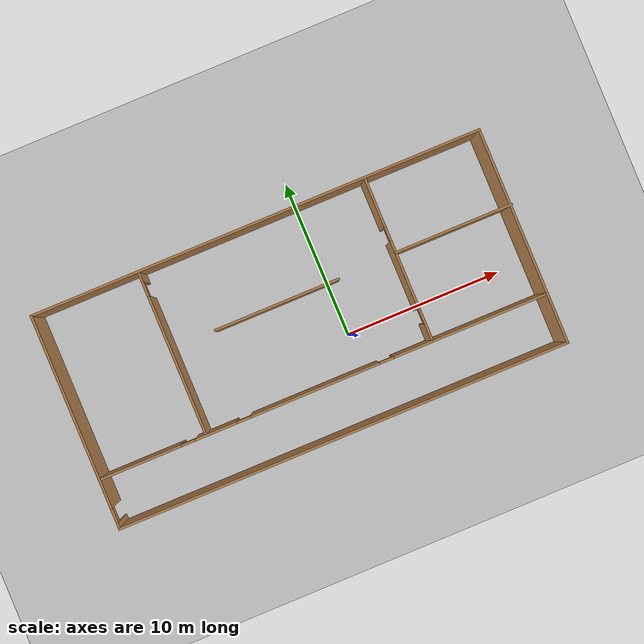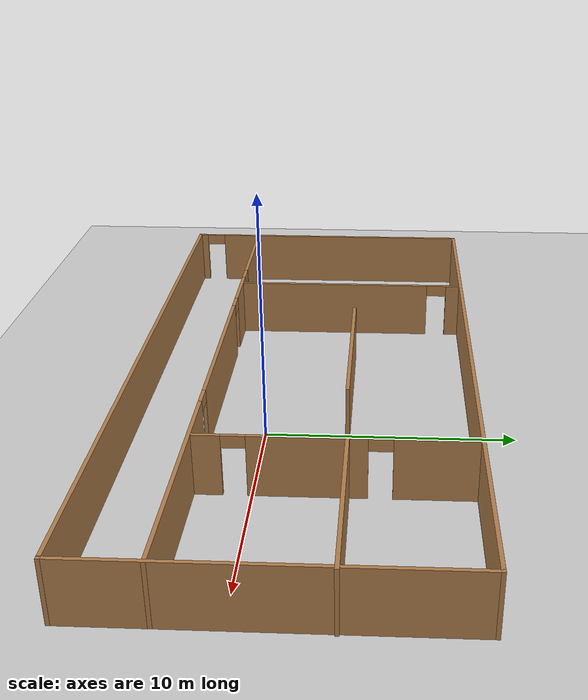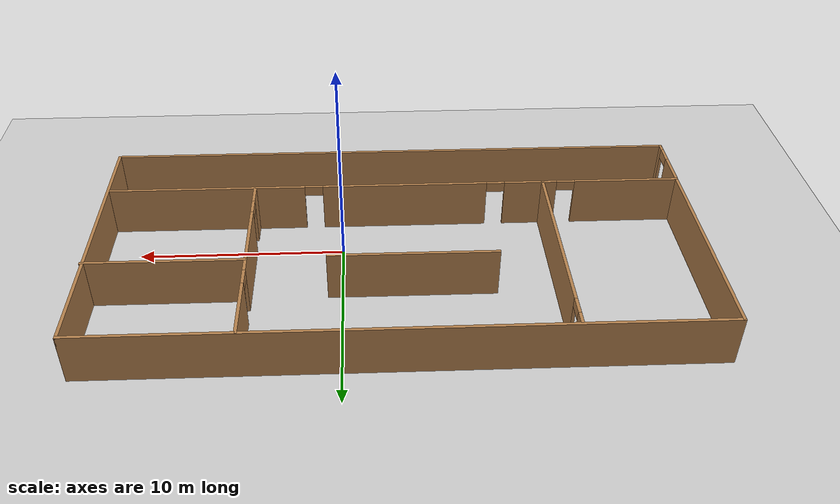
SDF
<sdf version="1.6">
 <world name="default">
  <model name="ground_plane">
   <static>1</static>
   <link name="link">
    <collision name="collision">
     <geometry><plane><normal>0 0 1</normal><size>100 100</size></plane></geometry>
     <surface>
      <contact><collide_bitmask>65535</collide_bitmask></contact>
      <friction><ode><mu>100</mu><mu2>50</mu2></ode></friction>
     </surface>
    </collision>
    <visual name="visual">
     <cast_shadows>0</cast_shadows>
     <geometry><plane><normal>0 0 1</normal><size>100 100</size></plane></geometry>
     <material>
      <script><uri>file://media/materials/scripts/gazebo.material</uri><name>Gazebo/Grey</name></script>
     </material>
    </visual>
   </link>
  </model>
  <model name="mybuilding">
   <link name="Wall_0">
    <pose>-14.3342 0 0 0 -0 1.5708</pose>
    <visual name="Wall_0_Visual_0">
     <pose>-6.64035 0 1.25 0 -0 0</pose>
     <geometry><box><size>0.46929 0.15 2.5</size></box></geometry>
     <material>
      <script><uri>file://media/materials/scripts/gazebo.material</uri><name>Gazebo/Wood</name></script>
      <ambient>1 1 1 1</ambient>
      <shader type="pixel"/>
      <diffuse>1 1 1 1</diffuse>
      <specular>0.2 0.2 0.2 1</specular>
      <emissive>0 0 0 1</emissive>
     </material>
     <meta><layer>0</layer></meta>
    </visual>
    <visual name="Wall_0_Visual_1">
     <pose>0.684645 0 1.25 0 -0 0</pose>
     <geometry><box><size>12.3807 0.15 2.5</size></box></geometry>
     <material>
      <script><uri>file://media/materials/scripts/gazebo.material</uri><name>Gazebo/Wood</name></script>
      <ambient>1 1 1 1</ambient>
      <shader type="pixel"/>
      <diffuse>1 1 1 1</diffuse>
      <specular>0.2 0.2 0.2 1</specular>
      <emissive>0 0 0 1</emissive>
     </material>
     <meta><layer>0</layer></meta>
    </visual>
    <visual name="Wall_0_Visual_2">
     <pose>-5.95571 0 2.25 0 -0 0</pose>
     <geometry><box><size>0.9 0.15 0.5</size></box></geometry>
     <material>
      <script><uri>file://media/materials/scripts/gazebo.material</uri><name>Gazebo/Wood</name></script>
      <ambient>1 1 1 1</ambient>
      <shader type="pixel"/>
      <diffuse>1 1 1 1</diffuse>
      <specular>0.2 0.2 0.2 1</specular>
      <emissive>0 0 0 1</emissive>
     </material>
     <meta><layer>0</layer></meta>
    </visual>
    <collision name="Wall_0_Collision_0">
     <pose>-6.64035 0 1.25 0 -0 0</pose>
     <geometry><box><size>0.46929 0.15 2.5</size></box></geometry>
     <surface>
      <friction>
       <ode><mu>1</mu><mu2>1</mu2><fdir1>0 0 0</fdir1><slip1>0</slip1><slip2>0</slip2></ode>
       <torsional>
        <coefficient>1</coefficient>
        <patch_radius>0</patch_radius>
        <surface_radius>0</surface_radius>
        <use_patch_radius>1</use_patch_radius>
        <ode><slip>0</slip></ode>
       </torsional>
      </friction>
      <bounce><restitution_coefficient>0</restitution_coefficient><threshold>1e+06</threshold></bounce>
      <contact>
       <collide_without_contact>0</collide_without_contact>
       <collide_without_contact_bitmask>1</collide_without_contact_bitmask>
       <collide_bitmask>1</collide_bitmask>
       <ode>
        <soft_cfm>0</soft_cfm>
        <soft_erp>0.2</soft_erp>
        <kp>1e+13</kp>
        <kd>1</kd>
        <max_vel>0.01</max_vel>
        <min_depth>0</min_depth>
       </ode>
       <bullet>
        <split_impulse>1</split_impulse>
        <split_impulse_penetration_threshold>-0.01</split_impulse_penetration_threshold>
        <soft_cfm>0</soft_cfm>
        <soft_erp>0.2</soft_erp>
        <kp>1e+13</kp>
        <kd>1</kd>
       </bullet>
      </contact>
     </surface>
    </collision>
    <collision name="Wall_0_Collision_1">
     <pose>0.684645 0 1.25 0 -0 0</pose>
     <geometry><box><size>12.3807 0.15 2.5</size></box></geometry>
     <surface>
      <friction>
       <ode><mu>1</mu><mu2>1</mu2><fdir1>0 0 0</fdir1><slip1>0</slip1><slip2>0</slip2></ode>
       <torsional>
        <coefficient>1</coefficient>
        <patch_radius>0</patch_radius>
        <surface_radius>0</surface_radius>
        <use_patch_radius>1</use_patch_radius>
        <ode><slip>0</slip></ode>
       </torsional>
      </friction>
      <bounce><restitution_coefficient>0</restitution_coefficient><threshold>1e+06</threshold></bounce>
      <contact>
       <collide_without_contact>0</collide_without_contact>
       <collide_without_contact_bitmask>1</collide_without_contact_bitmask>
       <collide_bitmask>1</collide_bitmask>
       <ode>
        <soft_cfm>0</soft_cfm>
        <soft_erp>0.2</soft_erp>
        <kp>1e+13</kp>
        <kd>1</kd>
        <max_vel>0.01</max_vel>
        <min_depth>0</min_depth>
       </ode>
       <bullet>
        <split_impulse>1</split_impulse>
        <split_impulse_penetration_threshold>-0.01</split_impulse_penetration_threshold>
        <soft_cfm>0</soft_cfm>
        <soft_erp>0.2</soft_erp>
        <kp>1e+13</kp>
        <kd>1</kd>
       </bullet>
      </contact>
     </surface>
    </collision>
    <collision name="Wall_0_Collision_2">
     <pose>-5.95571 0 2.25 0 -0 0</pose>
     <geometry><box><size>0.9 0.15 0.5</size></box></geometry>
     <surface>
      <friction>
       <ode><mu>1</mu><mu2>1</mu2><fdir1>0 0 0</fdir1><slip1>0</slip1><slip2>0</slip2></ode>
       <torsional>
        <coefficient>1</coefficient>
        <patch_radius>0</patch_radius>
        <surface_radius>0</surface_radius>
        <use_patch_radius>1</use_patch_radius>
        <ode><slip>0</slip></ode>
       </torsional>
      </friction>
      <bounce><restitution_coefficient>0</restitution_coefficient><threshold>1e+06</threshold></bounce>
      <contact>
       <collide_without_contact>0</collide_without_contact>
       <collide_without_contact_bitmask>1</collide_without_contact_bitmask>
       <collide_bitmask>1</collide_bitmask>
       <ode>
        <soft_cfm>0</soft_cfm>
        <soft_erp>0.2</soft_erp>
        <kp>1e+13</kp>
        <kd>1</kd>
        <max_vel>0.01</max_vel>
        <min_depth>0</min_depth>
       </ode>
       <bullet>
        <split_impulse>1</split_impulse>
        <split_impulse_penetration_threshold>-0.01</split_impulse_penetration_threshold>
        <soft_cfm>0</soft_cfm>
        <soft_erp>0.2</soft_erp>
        <kp>1e+13</kp>
        <kd>1</kd>
       </bullet>
      </contact>
     </surface>
    </collision>
   </link>
   <link name="Wall_1">
    <pose>-0.034165 6.8 0 0 -0 0</pose>
    <visual name="Wall_1_Visual">
     <pose>0 0 1.25 0 -0 0</pose>
     <geometry><box><size>28.75 0.15 2.5</size></box></geometry>
     <material>
      <script><uri>file://media/materials/scripts/gazebo.material</uri><name>Gazebo/Wood</name></script>
      <ambient>1 1 1 1</ambient>
      <shader type="pixel"/>
      <diffuse>1 1 1 1</diffuse>
      <specular>0.2 0.2 0.2 1</specular>
      <emissive>0 0 0 1</emissive>
     </material>
     <meta><layer>0</layer></meta>
    </visual>
    <collision name="Wall_1_Collision">
     <pose>0 0 1.25 0 -0 0</pose>
     <geometry><box><size>28.75 0.15 2.5</size></box></geometry>
     <surface>
      <friction>
       <ode><mu>1</mu><mu2>1</mu2><fdir1>0 0 0</fdir1><slip1>0</slip1><slip2>0</slip2></ode>
       <torsional>
        <coefficient>1</coefficient>
        <patch_radius>0</patch_radius>
        <surface_radius>0</surface_radius>
        <use_patch_radius>1</use_patch_radius>
        <ode><slip>0</slip></ode>
       </torsional>
      </friction>
      <bounce><restitution_coefficient>0</restitution_coefficient><threshold>1e+06</threshold></bounce>
      <contact>
       <collide_without_contact>0</collide_without_contact>
       <collide_without_contact_bitmask>1</collide_without_contact_bitmask>
       <collide_bitmask>1</collide_bitmask>
       <ode>
        <soft_cfm>0</soft_cfm>
        <soft_erp>0.2</soft_erp>
        <kp>1e+13</kp>
        <kd>1</kd>
        <max_vel>0.01</max_vel>
        <min_depth>0</min_depth>
       </ode>
       <bullet>
        <split_impulse>1</split_impulse>
        <split_impulse_penetration_threshold>-0.01</split_impulse_penetration_threshold>
        <soft_cfm>0</soft_cfm>
        <soft_erp>0.2</soft_erp>
        <kp>1e+13</kp>
        <kd>1</kd>
       </bullet>
      </contact>
     </surface>
    </collision>
   </link>
   <link name="Wall_11">
    <pose>10.6592 1.99469 0 0 -0 0</pose>
    <visual name="Wall_11_Visual">
     <pose>0 0 1.25 0 -0 0</pose>
     <geometry><box><size>7.5 0.15 2.5</size></box></geometry>
     <material>
      <script><uri>file://media/materials/scripts/gazebo.material</uri><name>Gazebo/Wood</name></script>
      <ambient>1 1 1 1</ambient>
      <shader type="pixel"/>
      <diffuse>1 1 1 1</diffuse>
      <specular>0.2 0.2 0.2 1</specular>
      <emissive>0 0 0 1</emissive>
     </material>
     <meta><layer>0</layer></meta>
    </visual>
    <collision name="Wall_11_Collision">
     <pose>0 0 1.25 0 -0 0</pose>
     <geometry><box><size>7.5 0.15 2.5</size></box></geometry>
     <surface>
      <friction>
       <ode><mu>1</mu><mu2>1</mu2><fdir1>0 0 0</fdir1><slip1>0</slip1><slip2>0</slip2></ode>
       <torsional>
        <coefficient>1</coefficient>
        <patch_radius>0</patch_radius>
        <surface_radius>0</surface_radius>
        <use_patch_radius>1</use_patch_radius>
        <ode><slip>0</slip></ode>
       </torsional>
      </friction>
      <bounce><restitution_coefficient>0</restitution_coefficient><threshold>1e+06</threshold></bounce>
      <contact>
       <collide_without_contact>0</collide_without_contact>
       <collide_without_contact_bitmask>1</collide_without_contact_bitmask>
       <collide_bitmask>1</collide_bitmask>
       <ode>
        <soft_cfm>0</soft_cfm>
        <soft_erp>0.2</soft_erp>
        <kp>1e+13</kp>
        <kd>1</kd>
        <max_vel>0.01</max_vel>
        <min_depth>0</min_depth>
       </ode>
       <bullet>
        <split_impulse>1</split_impulse>
        <split_impulse_penetration_threshold>-0.01</split_impulse_penetration_threshold>
        <soft_cfm>0</soft_cfm>
        <soft_erp>0.2</soft_erp>
        <kp>1e+13</kp>
        <kd>1</kd>
       </bullet>
      </contact>
     </surface>
    </collision>
   </link>
   <link name="Wall_13">
    <pose>-0.699826 1.85398 0 0 -0 0</pose>
    <visual name="Wall_13_Visual">
     <pose>0 0 1.25 0 -0 0</pose>
     <geometry><box><size>8 0.15 2.5</size></box></geometry>
     <material>
      <script><uri>file://media/materials/scripts/gazebo.material</uri><name>Gazebo/Wood</name></script>
      <ambient>1 1 1 1</ambient>
      <shader type="pixel"/>
      <diffuse>1 1 1 1</diffuse>
      <specular>0.2 0.2 0.2 1</specular>
      <emissive>0 0 0 1</emissive>
     </material>
     <meta><layer>0</layer></meta>
    </visual>
    <collision name="Wall_13_Collision">
     <pose>0 0 1.25 0 -0 0</pose>
     <geometry><box><size>8 0.15 2.5</size></box></geometry>
     <surface>
      <friction>
       <ode><mu>1</mu><mu2>1</mu2><fdir1>0 0 0</fdir1><slip1>0</slip1><slip2>0</slip2></ode>
       <torsional>
        <coefficient>1</coefficient>
        <patch_radius>0</patch_radius>
        <surface_radius>0</surface_radius>
        <use_patch_radius>1</use_patch_radius>
        <ode><slip>0</slip></ode>
       </torsional>
      </friction>
      <bounce><restitution_coefficient>0</restitution_coefficient><threshold>1e+06</threshold></bounce>
      <contact>
       <collide_without_contact>0</collide_without_contact>
       <collide_without_contact_bitmask>1</collide_without_contact_bitmask>
       <collide_bitmask>1</collide_bitmask>
       <ode>
        <soft_cfm>0</soft_cfm>
        <soft_erp>0.2</soft_erp>
        <kp>1e+13</kp>
        <kd>1</kd>
        <max_vel>0.01</max_vel>
        <min_depth>0</min_depth>
       </ode>
       <bullet>
        <split_impulse>1</split_impulse>
        <split_impulse_penetration_threshold>-0.01</split_impulse_penetration_threshold>
        <soft_cfm>0</soft_cfm>
        <soft_erp>0.2</soft_erp>
        <kp>1e+13</kp>
        <kd>1</kd>
       </bullet>
      </contact>
     </surface>
    </collision>
   </link>
   <link name="Wall_2">
    <pose>14.2658 0 0 0 0 -1.5708</pose>
    <visual name="Wall_2_Visual">
     <pose>0 0 1.25 0 -0 0</pose>
     <geometry><box><size>13.75 0.15 2.5</size></box></geometry>
     <material>
      <script><uri>file://media/materials/scripts/gazebo.material</uri><name>Gazebo/Wood</name></script>
      <ambient>1 1 1 1</ambient>
      <shader type="pixel"/>
      <diffuse>1 1 1 1</diffuse>
      <specular>0.2 0.2 0.2 1</specular>
      <emissive>0 0 0 1</emissive>
     </material>
     <meta><layer>0</layer></meta>
    </visual>
    <collision name="Wall_2_Collision">
     <pose>0 0 1.25 0 -0 0</pose>
     <geometry><box><size>13.75 0.15 2.5</size></box></geometry>
     <surface>
      <friction>
       <ode><mu>1</mu><mu2>1</mu2><fdir1>0 0 0</fdir1><slip1>0</slip1><slip2>0</slip2></ode>
       <torsional>
        <coefficient>1</coefficient>
        <patch_radius>0</patch_radius>
        <surface_radius>0</surface_radius>
        <use_patch_radius>1</use_patch_radius>
        <ode><slip>0</slip></ode>
       </torsional>
      </friction>
      <bounce><restitution_coefficient>0</restitution_coefficient><threshold>1e+06</threshold></bounce>
      <contact>
       <collide_without_contact>0</collide_without_contact>
       <collide_without_contact_bitmask>1</collide_without_contact_bitmask>
       <collide_bitmask>1</collide_bitmask>
       <ode>
        <soft_cfm>0</soft_cfm>
        <soft_erp>0.2</soft_erp>
        <kp>1e+13</kp>
        <kd>1</kd>
        <max_vel>0.01</max_vel>
        <min_depth>0</min_depth>
       </ode>
       <bullet>
        <split_impulse>1</split_impulse>
        <split_impulse_penetration_threshold>-0.01</split_impulse_penetration_threshold>
        <soft_cfm>0</soft_cfm>
        <soft_erp>0.2</soft_erp>
        <kp>1e+13</kp>
        <kd>1</kd>
       </bullet>
      </contact>
     </surface>
    </collision>
   </link>
   <link name="Wall_3">
    <pose>-0.034165 -6.8 0 0 -0 3.14159</pose>
    <visual name="Wall_3_Visual">
     <pose>0 0 1.25 0 -0 0</pose>
     <geometry><box><size>28.75 0.15 2.5</size></box></geometry>
     <material>
      <script><uri>file://media/materials/scripts/gazebo.material</uri><name>Gazebo/Wood</name></script>
      <ambient>1 1 1 1</ambient>
      <shader type="pixel"/>
      <diffuse>1 1 1 1</diffuse>
      <specular>0.2 0.2 0.2 1</specular>
      <emissive>0 0 0 1</emissive>
     </material>
     <meta><layer>0</layer></meta>
    </visual>
    <collision name="Wall_3_Collision">
     <pose>0 0 1.25 0 -0 0</pose>
     <geometry><box><size>28.75 0.15 2.5</size></box></geometry>
     <surface>
      <friction>
       <ode><mu>1</mu><mu2>1</mu2><fdir1>0 0 0</fdir1><slip1>0</slip1><slip2>0</slip2></ode>
       <torsional>
        <coefficient>1</coefficient>
        <patch_radius>0</patch_radius>
        <surface_radius>0</surface_radius>
        <use_patch_radius>1</use_patch_radius>
        <ode><slip>0</slip></ode>
       </torsional>
      </friction>
      <bounce><restitution_coefficient>0</restitution_coefficient><threshold>1e+06</threshold></bounce>
      <contact>
       <collide_without_contact>0</collide_without_contact>
       <collide_without_contact_bitmask>1</collide_without_contact_bitmask>
       <collide_bitmask>1</collide_bitmask>
       <ode>
        <soft_cfm>0</soft_cfm>
        <soft_erp>0.2</soft_erp>
        <kp>1e+13</kp>
        <kd>1</kd>
        <max_vel>0.01</max_vel>
        <min_depth>0</min_depth>
       </ode>
       <bullet>
        <split_impulse>1</split_impulse>
        <split_impulse_penetration_threshold>-0.01</split_impulse_penetration_threshold>
        <soft_cfm>0</soft_cfm>
        <soft_erp>0.2</soft_erp>
        <kp>1e+13</kp>
        <kd>1</kd>
       </bullet>
      </contact>
     </surface>
    </collision>
   </link>
   <link name="Wall_5">
    <pose>-0.034165 -3.66909 0 0 -0 0</pose>
    <visual name="Wall_5_Visual_0">
     <pose>-11.7306 0 1.25 0 -0 0</pose>
     <geometry><box><size>5.28878 0.15 2.5</size></box></geometry>
     <material>
      <script><uri>file://media/materials/scripts/gazebo.material</uri><name>Gazebo/Wood</name></script>
      <ambient>1 1 1 1</ambient>
      <shader type="pixel"/>
      <diffuse>1 1 1 1</diffuse>
      <specular>0.2 0.2 0.2 1</specular>
      <emissive>0 0 0 1</emissive>
     </material>
     <meta><layer>0</layer></meta>
    </visual>
    <visual name="Wall_5_Visual_1">
     <pose>-6.85969 0 1.25 0 -0 0</pose>
     <geometry><box><size>2.65306 0.15 2.5</size></box></geometry>
     <material>
      <script><uri>file://media/materials/scripts/gazebo.material</uri><name>Gazebo/Wood</name></script>
      <ambient>1 1 1 1</ambient>
      <shader type="pixel"/>
      <diffuse>1 1 1 1</diffuse>
      <specular>0.2 0.2 0.2 1</specular>
      <emissive>0 0 0 1</emissive>
     </material>
     <meta><layer>0</layer></meta>
    </visual>
    <visual name="Wall_5_Visual_2">
     <pose>-0.509925 0 1.25 0 -0 0</pose>
     <geometry><box><size>8.24648 0.15 2.5</size></box></geometry>
     <material>
      <script><uri>file://media/materials/scripts/gazebo.material</uri><name>Gazebo/Wood</name></script>
      <ambient>1 1 1 1</ambient>
      <shader type="pixel"/>
      <diffuse>1 1 1 1</diffuse>
      <specular>0.2 0.2 0.2 1</specular>
      <emissive>0 0 0 1</emissive>
     </material>
     <meta><layer>0</layer></meta>
    </visual>
    <visual name="Wall_5_Visual_3">
     <pose>9.44416 0 1.25 0 -0 0</pose>
     <geometry><box><size>9.86169 0.15 2.5</size></box></geometry>
     <material>
      <script><uri>file://media/materials/scripts/gazebo.material</uri><name>Gazebo/Wood</name></script>
      <ambient>1 1 1 1</ambient>
      <shader type="pixel"/>
      <diffuse>1 1 1 1</diffuse>
      <specular>0.2 0.2 0.2 1</specular>
      <emissive>0 0 0 1</emissive>
     </material>
     <meta><layer>0</layer></meta>
    </visual>
    <visual name="Wall_5_Visual_4">
     <pose>-8.63622 0 2.25 0 -0 0</pose>
     <geometry><box><size>0.9 0.15 0.5</size></box></geometry>
     <material>
      <script><uri>file://media/materials/scripts/gazebo.material</uri><name>Gazebo/Wood</name></script>
      <ambient>1 1 1 1</ambient>
      <shader type="pixel"/>
      <diffuse>1 1 1 1</diffuse>
      <specular>0.2 0.2 0.2 1</specular>
      <emissive>0 0 0 1</emissive>
     </material>
     <meta><layer>0</layer></meta>
    </visual>
    <visual name="Wall_5_Visual_5">
     <pose>-5.08316 0 2.25 0 -0 0</pose>
     <geometry><box><size>0.9 0.15 0.5</size></box></geometry>
     <material>
      <script><uri>file://media/materials/scripts/gazebo.material</uri><name>Gazebo/Wood</name></script>
      <ambient>1 1 1 1</ambient>
      <shader type="pixel"/>
      <diffuse>1 1 1 1</diffuse>
      <specular>0.2 0.2 0.2 1</specular>
      <emissive>0 0 0 1</emissive>
     </material>
     <meta><layer>0</layer></meta>
    </visual>
    <visual name="Wall_5_Visual_6">
     <pose>4.06331 0 2.25 0 -0 0</pose>
     <geometry><box><size>0.9 0.15 0.5</size></box></geometry>
     <material>
      <script><uri>file://media/materials/scripts/gazebo.material</uri><name>Gazebo/Wood</name></script>
      <ambient>1 1 1 1</ambient>
      <shader type="pixel"/>
      <diffuse>1 1 1 1</diffuse>
      <specular>0.2 0.2 0.2 1</specular>
      <emissive>0 0 0 1</emissive>
     </material>
     <meta><layer>0</layer></meta>
    </visual>
    <collision name="Wall_5_Collision_0">
     <pose>-11.7306 0 1.25 0 -0 0</pose>
     <geometry><box><size>5.28878 0.15 2.5</size></box></geometry>
     <surface>
      <friction>
       <ode><mu>1</mu><mu2>1</mu2><fdir1>0 0 0</fdir1><slip1>0</slip1><slip2>0</slip2></ode>
       <torsional>
        <coefficient>1</coefficient>
        <patch_radius>0</patch_radius>
        <surface_radius>0</surface_radius>
        <use_patch_radius>1</use_patch_radius>
        <ode><slip>0</slip></ode>
       </torsional>
      </friction>
      <bounce><restitution_coefficient>0</restitution_coefficient><threshold>1e+06</threshold></bounce>
      <contact>
       <collide_without_contact>0</collide_without_contact>
       <collide_without_contact_bitmask>1</collide_without_contact_bitmask>
       <collide_bitmask>1</collide_bitmask>
       <ode>
        <soft_cfm>0</soft_cfm>
        <soft_erp>0.2</soft_erp>
        <kp>1e+13</kp>
        <kd>1</kd>
        <max_vel>0.01</max_vel>
        <min_depth>0</min_depth>
       </ode>
       <bullet>
        <split_impulse>1</split_impulse>
        <split_impulse_penetration_threshold>-0.01</split_impulse_penetration_threshold>
        <soft_cfm>0</soft_cfm>
        <soft_erp>0.2</soft_erp>
        <kp>1e+13</kp>
        <kd>1</kd>
       </bullet>
      </contact>
     </surface>
    </collision>
    <collision name="Wall_5_Collision_1">
     <pose>-6.85969 0 1.25 0 -0 0</pose>
     <geometry><box><size>2.65306 0.15 2.5</size></box></geometry>
     <surface>
      <friction>
       <ode><mu>1</mu><mu2>1</mu2><fdir1>0 0 0</fdir1><slip1>0</slip1><slip2>0</slip2></ode>
       <torsional>
        <coefficient>1</coefficient>
        <patch_radius>0</patch_radius>
        <surface_radius>0</surface_radius>
        <use_patch_radius>1</use_patch_radius>
        <ode><slip>0</slip></ode>
       </torsional>
      </friction>
      <bounce><restitution_coefficient>0</restitution_coefficient><threshold>1e+06</threshold></bounce>
      <contact>
       <collide_without_contact>0</collide_without_contact>
       <collide_without_contact_bitmask>1</collide_without_contact_bitmask>
       <collide_bitmask>1</collide_bitmask>
       <ode>
        <soft_cfm>0</soft_cfm>
        <soft_erp>0.2</soft_erp>
        <kp>1e+13</kp>
        <kd>1</kd>
        <max_vel>0.01</max_vel>
        <min_depth>0</min_depth>
       </ode>
       <bullet>
        <split_impulse>1</split_impulse>
        <split_impulse_penetration_threshold>-0.01</split_impulse_penetration_threshold>
        <soft_cfm>0</soft_cfm>
        <soft_erp>0.2</soft_erp>
        <kp>1e+13</kp>
        <kd>1</kd>
       </bullet>
      </contact>
     </surface>
    </collision>
    <collision name="Wall_5_Collision_2">
     <pose>-0.509925 0 1.25 0 -0 0</pose>
     <geometry><box><size>8.24648 0.15 2.5</size></box></geometry>
     <surface>
      <friction>
       <ode><mu>1</mu><mu2>1</mu2><fdir1>0 0 0</fdir1><slip1>0</slip1><slip2>0</slip2></ode>
       <torsional>
        <coefficient>1</coefficient>
        <patch_radius>0</patch_radius>
        <surface_radius>0</surface_radius>
        <use_patch_radius>1</use_patch_radius>
        <ode><slip>0</slip></ode>
       </torsional>
      </friction>
      <bounce><restitution_coefficient>0</restitution_coefficient><threshold>1e+06</threshold></bounce>
      <contact>
       <collide_without_contact>0</collide_without_contact>
       <collide_without_contact_bitmask>1</collide_without_contact_bitmask>
       <collide_bitmask>1</collide_bitmask>
       <ode>
        <soft_cfm>0</soft_cfm>
        <soft_erp>0.2</soft_erp>
        <kp>1e+13</kp>
        <kd>1</kd>
        <max_vel>0.01</max_vel>
        <min_depth>0</min_depth>
       </ode>
       <bullet>
        <split_impulse>1</split_impulse>
        <split_impulse_penetration_threshold>-0.01</split_impulse_penetration_threshold>
        <soft_cfm>0</soft_cfm>
        <soft_erp>0.2</soft_erp>
        <kp>1e+13</kp>
        <kd>1</kd>
       </bullet>
      </contact>
     </surface>
    </collision>
    <collision name="Wall_5_Collision_3">
     <pose>9.44416 0 1.25 0 -0 0</pose>
     <geometry><box><size>9.86169 0.15 2.5</size></box></geometry>
     <surface>
      <friction>
       <ode><mu>1</mu><mu2>1</mu2><fdir1>0 0 0</fdir1><slip1>0</slip1><slip2>0</slip2></ode>
       <torsional>
        <coefficient>1</coefficient>
        <patch_radius>0</patch_radius>
        <surface_radius>0</surface_radius>
        <use_patch_radius>1</use_patch_radius>
        <ode><slip>0</slip></ode>
       </torsional>
      </friction>
      <bounce><restitution_coefficient>0</restitution_coefficient><threshold>1e+06</threshold></bounce>
      <contact>
       <collide_without_contact>0</collide_without_contact>
       <collide_without_contact_bitmask>1</collide_without_contact_bitmask>
       <collide_bitmask>1</collide_bitmask>
       <ode>
        <soft_cfm>0</soft_cfm>
        <soft_erp>0.2</soft_erp>
        <kp>1e+13</kp>
        <kd>1</kd>
        <max_vel>0.01</max_vel>
        <min_depth>0</min_depth>
       </ode>
       <bullet>
        <split_impulse>1</split_impulse>
        <split_impulse_penetration_threshold>-0.01</split_impulse_penetration_threshold>
        <soft_cfm>0</soft_cfm>
        <soft_erp>0.2</soft_erp>
        <kp>1e+13</kp>
        <kd>1</kd>
       </bullet>
      </contact>
     </surface>
    </collision>
    <collision name="Wall_5_Collision_4">
     <pose>-8.63622 0 2.25 0 -0 0</pose>
     <geometry><box><size>0.9 0.15 0.5</size></box></geometry>
     <surface>
      <friction>
       <ode><mu>1</mu><mu2>1</mu2><fdir1>0 0 0</fdir1><slip1>0</slip1><slip2>0</slip2></ode>
       <torsional>
        <coefficient>1</coefficient>
        <patch_radius>0</patch_radius>
        <surface_radius>0</surface_radius>
        <use_patch_radius>1</use_patch_radius>
        <ode><slip>0</slip></ode>
       </torsional>
      </friction>
      <bounce><restitution_coefficient>0</restitution_coefficient><threshold>1e+06</threshold></bounce>
      <contact>
       <collide_without_contact>0</collide_without_contact>
       <collide_without_contact_bitmask>1</collide_without_contact_bitmask>
       <collide_bitmask>1</collide_bitmask>
       <ode>
        <soft_cfm>0</soft_cfm>
        <soft_erp>0.2</soft_erp>
        <kp>1e+13</kp>
        <kd>1</kd>
        <max_vel>0.01</max_vel>
        <min_depth>0</min_depth>
       </ode>
       <bullet>
        <split_impulse>1</split_impulse>
        <split_impulse_penetration_threshold>-0.01</split_impulse_penetration_threshold>
        <soft_cfm>0</soft_cfm>
        <soft_erp>0.2</soft_erp>
        <kp>1e+13</kp>
        <kd>1</kd>
       </bullet>
      </contact>
     </surface>
    </collision>
    <collision name="Wall_5_Collision_5">
     <pose>-5.08316 0 2.25 0 -0 0</pose>
     <geometry><box><size>0.9 0.15 0.5</size></box></geometry>
     <surface>
      <friction>
       <ode><mu>1</mu><mu2>1</mu2><fdir1>0 0 0</fdir1><slip1>0</slip1><slip2>0</slip2></ode>
       <torsional>
        <coefficient>1</coefficient>
        <patch_radius>0</patch_radius>
        <surface_radius>0</surface_radius>
        <use_patch_radius>1</use_patch_radius>
        <ode><slip>0</slip></ode>
       </torsional>
      </friction>
      <bounce><restitution_coefficient>0</restitution_coefficient><threshold>1e+06</threshold></bounce>
      <contact>
       <collide_without_contact>0</collide_without_contact>
       <collide_without_contact_bitmask>1</collide_without_contact_bitmask>
       <collide_bitmask>1</collide_bitmask>
       <ode>
        <soft_cfm>0</soft_cfm>
        <soft_erp>0.2</soft_erp>
        <kp>1e+13</kp>
        <kd>1</kd>
        <max_vel>0.01</max_vel>
        <min_depth>0</min_depth>
       </ode>
       <bullet>
        <split_impulse>1</split_impulse>
        <split_impulse_penetration_threshold>-0.01</split_impulse_penetration_threshold>
        <soft_cfm>0</soft_cfm>
        <soft_erp>0.2</soft_erp>
        <kp>1e+13</kp>
        <kd>1</kd>
       </bullet>
      </contact>
     </surface>
    </collision>
    <collision name="Wall_5_Collision_6">
     <pose>4.06331 0 2.25 0 -0 0</pose>
     <geometry><box><size>0.9 0.15 0.5</size></box></geometry>
     <surface>
      <friction>
       <ode><mu>1</mu><mu2>1</mu2><fdir1>0 0 0</fdir1><slip1>0</slip1><slip2>0</slip2></ode>
       <torsional>
        <coefficient>1</coefficient>
        <patch_radius>0</patch_radius>
        <surface_radius>0</surface_radius>
        <use_patch_radius>1</use_patch_radius>
        <ode><slip>0</slip></ode>
       </torsional>
      </friction>
      <bounce><restitution_coefficient>0</restitution_coefficient><threshold>1e+06</threshold></bounce>
      <contact>
       <collide_without_contact>0</collide_without_contact>
       <collide_without_contact_bitmask>1</collide_without_contact_bitmask>
       <collide_bitmask>1</collide_bitmask>
       <ode>
        <soft_cfm>0</soft_cfm>
        <soft_erp>0.2</soft_erp>
        <kp>1e+13</kp>
        <kd>1</kd>
        <max_vel>0.01</max_vel>
        <min_depth>0</min_depth>
       </ode>
       <bullet>
        <split_impulse>1</split_impulse>
        <split_impulse_penetration_threshold>-0.01</split_impulse_penetration_threshold>
        <soft_cfm>0</soft_cfm>
        <soft_erp>0.2</soft_erp>
        <kp>1e+13</kp>
        <kd>1</kd>
       </bullet>
      </contact>
     </surface>
    </collision>
   </link>
   <link name="Wall_7">
    <pose>-7.50948 1.50591 0 0 -0 1.5708</pose>
    <visual name="Wall_7_Visual_0">
     <pose>-0.776314 0 1.25 0 -0 0</pose>
     <geometry><box><size>8.94737 0.15 2.5</size></box></geometry>
     <material>
      <script><uri>file://media/materials/scripts/gazebo.material</uri><name>Gazebo/Wood</name></script>
      <ambient>1 1 1 1</ambient>
      <shader type="pixel"/>
      <diffuse>1 1 1 1</diffuse>
      <specular>0.2 0.2 0.2 1</specular>
      <emissive>0 0 0 1</emissive>
     </material>
     <meta><layer>0</layer></meta>
    </visual>
    <visual name="Wall_7_Visual_1">
     <pose>4.92369 0 1.25 0 -0 0</pose>
     <geometry><box><size>0.652628 0.15 2.5</size></box></geometry>
     <material>
      <script><uri>file://media/materials/scripts/gazebo.material</uri><name>Gazebo/Wood</name></script>
      <ambient>1 1 1 1</ambient>
      <shader type="pixel"/>
      <diffuse>1 1 1 1</diffuse>
      <specular>0.2 0.2 0.2 1</specular>
      <emissive>0 0 0 1</emissive>
     </material>
     <meta><layer>0</layer></meta>
    </visual>
    <visual name="Wall_7_Visual_2">
     <pose>4.14737 0 2.25 0 -0 0</pose>
     <geometry><box><size>0.9 0.15 0.5</size></box></geometry>
     <material>
      <script><uri>file://media/materials/scripts/gazebo.material</uri><name>Gazebo/Wood</name></script>
      <ambient>1 1 1 1</ambient>
      <shader type="pixel"/>
      <diffuse>1 1 1 1</diffuse>
      <specular>0.2 0.2 0.2 1</specular>
      <emissive>0 0 0 1</emissive>
     </material>
     <meta><layer>0</layer></meta>
    </visual>
    <collision name="Wall_7_Collision_0">
     <pose>-0.776314 0 1.25 0 -0 0</pose>
     <geometry><box><size>8.94737 0.15 2.5</size></box></geometry>
     <surface>
      <friction>
       <ode><mu>1</mu><mu2>1</mu2><fdir1>0 0 0</fdir1><slip1>0</slip1><slip2>0</slip2></ode>
       <torsional>
        <coefficient>1</coefficient>
        <patch_radius>0</patch_radius>
        <surface_radius>0</surface_radius>
        <use_patch_radius>1</use_patch_radius>
        <ode><slip>0</slip></ode>
       </torsional>
      </friction>
      <bounce><restitution_coefficient>0</restitution_coefficient><threshold>1e+06</threshold></bounce>
      <contact>
       <collide_without_contact>0</collide_without_contact>
       <collide_without_contact_bitmask>1</collide_without_contact_bitmask>
       <collide_bitmask>1</collide_bitmask>
       <ode>
        <soft_cfm>0</soft_cfm>
        <soft_erp>0.2</soft_erp>
        <kp>1e+13</kp>
        <kd>1</kd>
        <max_vel>0.01</max_vel>
        <min_depth>0</min_depth>
       </ode>
       <bullet>
        <split_impulse>1</split_impulse>
        <split_impulse_penetration_threshold>-0.01</split_impulse_penetration_threshold>
        <soft_cfm>0</soft_cfm>
        <soft_erp>0.2</soft_erp>
        <kp>1e+13</kp>
        <kd>1</kd>
       </bullet>
      </contact>
     </surface>
    </collision>
    <collision name="Wall_7_Collision_1">
     <pose>4.92369 0 1.25 0 -0 0</pose>
     <geometry><box><size>0.652628 0.15 2.5</size></box></geometry>
     <surface>
      <friction>
       <ode><mu>1</mu><mu2>1</mu2><fdir1>0 0 0</fdir1><slip1>0</slip1><slip2>0</slip2></ode>
       <torsional>
        <coefficient>1</coefficient>
        <patch_radius>0</patch_radius>
        <surface_radius>0</surface_radius>
        <use_patch_radius>1</use_patch_radius>
        <ode><slip>0</slip></ode>
       </torsional>
      </friction>
      <bounce><restitution_coefficient>0</restitution_coefficient><threshold>1e+06</threshold></bounce>
      <contact>
       <collide_without_contact>0</collide_without_contact>
       <collide_without_contact_bitmask>1</collide_without_contact_bitmask>
       <collide_bitmask>1</collide_bitmask>
       <ode>
        <soft_cfm>0</soft_cfm>
        <soft_erp>0.2</soft_erp>
        <kp>1e+13</kp>
        <kd>1</kd>
        <max_vel>0.01</max_vel>
        <min_depth>0</min_depth>
       </ode>
       <bullet>
        <split_impulse>1</split_impulse>
        <split_impulse_penetration_threshold>-0.01</split_impulse_penetration_threshold>
        <soft_cfm>0</soft_cfm>
        <soft_erp>0.2</soft_erp>
        <kp>1e+13</kp>
        <kd>1</kd>
       </bullet>
      </contact>
     </surface>
    </collision>
    <collision name="Wall_7_Collision_2">
     <pose>4.14737 0 2.25 0 -0 0</pose>
     <geometry><box><size>0.9 0.15 0.5</size></box></geometry>
     <surface>
      <friction>
       <ode><mu>1</mu><mu2>1</mu2><fdir1>0 0 0</fdir1><slip1>0</slip1><slip2>0</slip2></ode>
       <torsional>
        <coefficient>1</coefficient>
        <patch_radius>0</patch_radius>
        <surface_radius>0</surface_radius>
        <use_patch_radius>1</use_patch_radius>
        <ode><slip>0</slip></ode>
       </torsional>
      </friction>
      <bounce><restitution_coefficient>0</restitution_coefficient><threshold>1e+06</threshold></bounce>
      <contact>
       <collide_without_contact>0</collide_without_contact>
       <collide_without_contact_bitmask>1</collide_without_contact_bitmask>
       <collide_bitmask>1</collide_bitmask>
       <ode>
        <soft_cfm>0</soft_cfm>
        <soft_erp>0.2</soft_erp>
        <kp>1e+13</kp>
        <kd>1</kd>
        <max_vel>0.01</max_vel>
        <min_depth>0</min_depth>
       </ode>
       <bullet>
        <split_impulse>1</split_impulse>
        <split_impulse_penetration_threshold>-0.01</split_impulse_penetration_threshold>
        <soft_cfm>0</soft_cfm>
        <soft_erp>0.2</soft_erp>
        <kp>1e+13</kp>
        <kd>1</kd>
       </bullet>
      </contact>
     </surface>
    </collision>
   </link>
   <link name="Wall_9">
    <pose>6.94899 1.604 0 0 0 -1.5708</pose>
    <visual name="Wall_9_Visual_0">
     <pose>-3.64338 0 1.25 0 -0 0</pose>
     <geometry><box><size>3.21323 0.15 2.5</size></box></geometry>
     <material>
      <script><uri>file://media/materials/scripts/gazebo.material</uri><name>Gazebo/Wood</name></script>
      <ambient>1 1 1 1</ambient>
      <shader type="pixel"/>
      <diffuse>1 1 1 1</diffuse>
      <specular>0.2 0.2 0.2 1</specular>
      <emissive>0 0 0 1</emissive>
     </material>
     <meta><layer>0</layer></meta>
    </visual>
    <visual name="Wall_9_Visual_1">
     <pose>1.05164 0 1.25 0 -0 0</pose>
     <geometry><box><size>4.37681 0.15 2.5</size></box></geometry>
     <material>
      <script><uri>file://media/materials/scripts/gazebo.material</uri><name>Gazebo/Wood</name></script>
      <ambient>1 1 1 1</ambient>
      <shader type="pixel"/>
      <diffuse>1 1 1 1</diffuse>
      <specular>0.2 0.2 0.2 1</specular>
      <emissive>0 0 0 1</emissive>
     </material>
     <meta><layer>0</layer></meta>
    </visual>
    <visual name="Wall_9_Visual_2">
     <pose>4.69502 0 1.25 0 -0 0</pose>
     <geometry><box><size>1.10995 0.15 2.5</size></box></geometry>
     <material>
      <script><uri>file://media/materials/scripts/gazebo.material</uri><name>Gazebo/Wood</name></script>
      <ambient>1 1 1 1</ambient>
      <shader type="pixel"/>
      <diffuse>1 1 1 1</diffuse>
      <specular>0.2 0.2 0.2 1</specular>
      <emissive>0 0 0 1</emissive>
     </material>
     <meta><layer>0</layer></meta>
    </visual>
    <visual name="Wall_9_Visual_3">
     <pose>-1.58677 0 2.25 0 -0 0</pose>
     <geometry><box><size>0.9 0.15 0.5</size></box></geometry>
     <material>
      <script><uri>file://media/materials/scripts/gazebo.material</uri><name>Gazebo/Wood</name></script>
      <ambient>1 1 1 1</ambient>
      <shader type="pixel"/>
      <diffuse>1 1 1 1</diffuse>
      <specular>0.2 0.2 0.2 1</specular>
      <emissive>0 0 0 1</emissive>
     </material>
     <meta><layer>0</layer></meta>
    </visual>
    <visual name="Wall_9_Visual_4">
     <pose>3.69005 0 2.25 0 -0 0</pose>
     <geometry><box><size>0.9 0.15 0.5</size></box></geometry>
     <material>
      <script><uri>file://media/materials/scripts/gazebo.material</uri><name>Gazebo/Wood</name></script>
      <ambient>1 1 1 1</ambient>
      <shader type="pixel"/>
      <diffuse>1 1 1 1</diffuse>
      <specular>0.2 0.2 0.2 1</specular>
      <emissive>0 0 0 1</emissive>
     </material>
     <meta><layer>0</layer></meta>
    </visual>
    <collision name="Wall_9_Collision_0">
     <pose>-3.64338 0 1.25 0 -0 0</pose>
     <geometry><box><size>3.21323 0.15 2.5</size></box></geometry>
     <surface>
      <friction>
       <ode><mu>1</mu><mu2>1</mu2><fdir1>0 0 0</fdir1><slip1>0</slip1><slip2>0</slip2></ode>
       <torsional>
        <coefficient>1</coefficient>
        <patch_radius>0</patch_radius>
        <surface_radius>0</surface_radius>
        <use_patch_radius>1</use_patch_radius>
        <ode><slip>0</slip></ode>
       </torsional>
      </friction>
      <bounce><restitution_coefficient>0</restitution_coefficient><threshold>1e+06</threshold></bounce>
      <contact>
       <collide_without_contact>0</collide_without_contact>
       <collide_without_contact_bitmask>1</collide_without_contact_bitmask>
       <collide_bitmask>1</collide_bitmask>
       <ode>
        <soft_cfm>0</soft_cfm>
        <soft_erp>0.2</soft_erp>
        <kp>1e+13</kp>
        <kd>1</kd>
        <max_vel>0.01</max_vel>
        <min_depth>0</min_depth>
       </ode>
       <bullet>
        <split_impulse>1</split_impulse>
        <split_impulse_penetration_threshold>-0.01</split_impulse_penetration_threshold>
        <soft_cfm>0</soft_cfm>
        <soft_erp>0.2</soft_erp>
        <kp>1e+13</kp>
        <kd>1</kd>
       </bullet>
      </contact>
     </surface>
    </collision>
    <collision name="Wall_9_Collision_1">
     <pose>1.05164 0 1.25 0 -0 0</pose>
     <geometry><box><size>4.37681 0.15 2.5</size></box></geometry>
     <surface>
      <friction>
       <ode><mu>1</mu><mu2>1</mu2><fdir1>0 0 0</fdir1><slip1>0</slip1><slip2>0</slip2></ode>
       <torsional>
        <coefficient>1</coefficient>
        <patch_radius>0</patch_radius>
        <surface_radius>0</surface_radius>
        <use_patch_radius>1</use_patch_radius>
        <ode><slip>0</slip></ode>
       </torsional>
      </friction>
      <bounce><restitution_coefficient>0</restitution_coefficient><threshold>1e+06</threshold></bounce>
      <contact>
       <collide_without_contact>0</collide_without_contact>
       <collide_without_contact_bitmask>1</collide_without_contact_bitmask>
       <collide_bitmask>1</collide_bitmask>
       <ode>
        <soft_cfm>0</soft_cfm>
        <soft_erp>0.2</soft_erp>
        <kp>1e+13</kp>
        <kd>1</kd>
        <max_vel>0.01</max_vel>
        <min_depth>0</min_depth>
       </ode>
       <bullet>
        <split_impulse>1</split_impulse>
        <split_impulse_penetration_threshold>-0.01</split_impulse_penetration_threshold>
        <soft_cfm>0</soft_cfm>
        <soft_erp>0.2</soft_erp>
        <kp>1e+13</kp>
        <kd>1</kd>
       </bullet>
      </contact>
     </surface>
    </collision>
    <collision name="Wall_9_Collision_2">
     <pose>4.69502 0 1.25 0 -0 0</pose>
     <geometry><box><size>1.10995 0.15 2.5</size></box></geometry>
     <surface>
      <friction>
       <ode><mu>1</mu><mu2>1</mu2><fdir1>0 0 0</fdir1><slip1>0</slip1><slip2>0</slip2></ode>
       <torsional>
        <coefficient>1</coefficient>
        <patch_radius>0</patch_radius>
        <surface_radius>0</surface_radius>
        <use_patch_radius>1</use_patch_radius>
        <ode><slip>0</slip></ode>
       </torsional>
      </friction>
      <bounce><restitution_coefficient>0</restitution_coefficient><threshold>1e+06</threshold></bounce>
      <contact>
       <collide_without_contact>0</collide_without_contact>
       <collide_without_contact_bitmask>1</collide_without_contact_bitmask>
       <collide_bitmask>1</collide_bitmask>
       <ode>
        <soft_cfm>0</soft_cfm>
        <soft_erp>0.2</soft_erp>
        <kp>1e+13</kp>
        <kd>1</kd>
        <max_vel>0.01</max_vel>
        <min_depth>0</min_depth>
       </ode>
       <bullet>
        <split_impulse>1</split_impulse>
        <split_impulse_penetration_threshold>-0.01</split_impulse_penetration_threshold>
        <soft_cfm>0</soft_cfm>
        <soft_erp>0.2</soft_erp>
        <kp>1e+13</kp>
        <kd>1</kd>
       </bullet>
      </contact>
     </surface>
    </collision>
    <collision name="Wall_9_Collision_3">
     <pose>-1.58677 0 2.25 0 -0 0</pose>
     <geometry><box><size>0.9 0.15 0.5</size></box></geometry>
     <surface>
      <friction>
       <ode><mu>1</mu><mu2>1</mu2><fdir1>0 0 0</fdir1><slip1>0</slip1><slip2>0</slip2></ode>
       <torsional>
        <coefficient>1</coefficient>
        <patch_radius>0</patch_radius>
        <surface_radius>0</surface_radius>
        <use_patch_radius>1</use_patch_radius>
        <ode><slip>0</slip></ode>
       </torsional>
      </friction>
      <bounce><restitution_coefficient>0</restitution_coefficient><threshold>1e+06</threshold></bounce>
      <contact>
       <collide_without_contact>0</collide_without_contact>
       <collide_without_contact_bitmask>1</collide_without_contact_bitmask>
       <collide_bitmask>1</collide_bitmask>
       <ode>
        <soft_cfm>0</soft_cfm>
        <soft_erp>0.2</soft_erp>
        <kp>1e+13</kp>
        <kd>1</kd>
        <max_vel>0.01</max_vel>
        <min_depth>0</min_depth>
       </ode>
       <bullet>
        <split_impulse>1</split_impulse>
        <split_impulse_penetration_threshold>-0.01</split_impulse_penetration_threshold>
        <soft_cfm>0</soft_cfm>
        <soft_erp>0.2</soft_erp>
        <kp>1e+13</kp>
        <kd>1</kd>
       </bullet>
      </contact>
     </surface>
    </collision>
    <collision name="Wall_9_Collision_4">
     <pose>3.69005 0 2.25 0 -0 0</pose>
     <geometry><box><size>0.9 0.15 0.5</size></box></geometry>
     <surface>
      <friction>
       <ode><mu>1</mu><mu2>1</mu2><fdir1>0 0 0</fdir1><slip1>0</slip1><slip2>0</slip2></ode>
       <torsional>
        <coefficient>1</coefficient>
        <patch_radius>0</patch_radius>
        <surface_radius>0</surface_radius>
        <use_patch_radius>1</use_patch_radius>
        <ode><slip>0</slip></ode>
       </torsional>
      </friction>
      <bounce><restitution_coefficient>0</restitution_coefficient><threshold>1e+06</threshold></bounce>
      <contact>
       <collide_without_contact>0</collide_without_contact>
       <collide_without_contact_bitmask>1</collide_without_contact_bitmask>
       <collide_bitmask>1</collide_bitmask>
       <ode>
        <soft_cfm>0</soft_cfm>
        <soft_erp>0.2</soft_erp>
        <kp>1e+13</kp>
        <kd>1</kd>
        <max_vel>0.01</max_vel>
        <min_depth>0</min_depth>
       </ode>
       <bullet>
        <split_impulse>1</split_impulse>
        <split_impulse_penetration_threshold>-0.01</split_impulse_penetration_threshold>
        <soft_cfm>0</soft_cfm>
        <soft_erp>0.2</soft_erp>
        <kp>1e+13</kp>
        <kd>1</kd>
       </bullet>
      </contact>
     </surface>
    </collision>
   </link>
   <static>1</static>
   <pose>-2.6134 1.45543 0 0 -0 0</pose>
  </model>
 </world>
</sdf>
